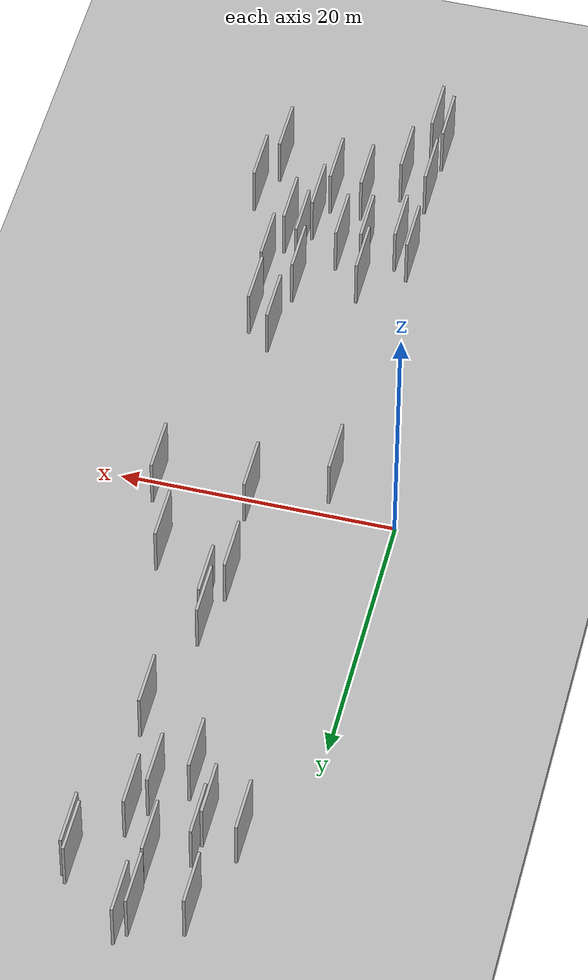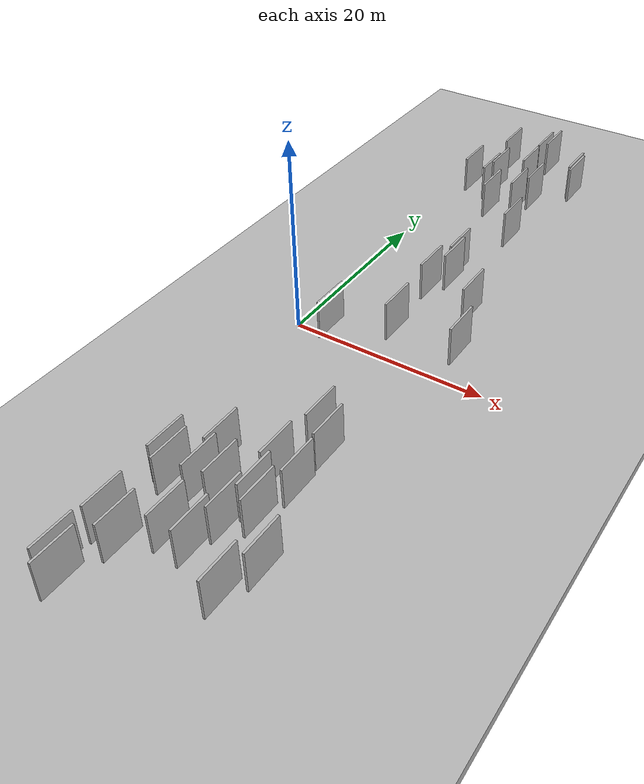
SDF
<?xml version="1.0" encoding="utf-8"?>

<sdf version="1.6">

   <world name="default">

      <gui fullscreen="0">

         <camera name="user_camera">

            <pose>-15 0 4.57585 0 0 0</pose>

            <view_controller>orbit</view_controller>

         </camera>

      </gui>

      <scene>

         <sky>

           <clouds>

             <speed>12</speed>

           </clouds>

         </sky>

         <ambient>0.4 0.4 0.4 1</ambient>

         <background>0.7 0.7 0.7 1</background>

         <shadows>1</shadows>

      </scene>

      <gravity>0 0 -9.8066</gravity>

      <magnetic_field>6e-06 2.3e-05 -4.2e-05</magnetic_field>

      <physics default="0" name="default_physics" type="ode">

         <ode>

            <solver>

               <type>quick</type>

               <iters>10</iters>

               <sor>1.0</sor>

               <use_dynamic_moi_rescaling>0</use_dynamic_moi_rescaling>

            </solver>

            <constraints>

               <cfm>0</cfm>

               <erp>0.2</erp>

               <contact_max_correcting_vel>100</contact_max_correcting_vel>

               <contact_surface_layer>0.001</contact_surface_layer>

            </constraints>

         </ode>

         <max_step_size>0.004</max_step_size>

         <real_time_factor>1</real_time_factor>

         <real_time_update_rate>250</real_time_update_rate>

      </physics>

      <light name="sun" type="directional">

         <cast_shadows>1</cast_shadows>

         <pose>0 0 10 0 0 0</pose>

         <diffuse>0.8 0.8 0.8 1</diffuse>

         <specular>0.2 0.2 0.2 1</specular>

         <attenuation>

            <range>1000</range>

            <constant>0.9</constant>

            <linear>0.01</linear>

            <quadratic>0.001</quadratic>

         </attenuation>

         <direction>-0.5 0.1 -0.9</direction>

      </light>

      <include>

         <name>ground_plane_1</name>

         <uri>model://HANNAS_ground_plane</uri>

         <pose>0 0 0  0 0 0</pose>

      </include>

      <include>

         <name>ground_plane_2</name>

         <uri>model://HANNAS_ground_plane</uri>

         <pose>100 0 0  0 0 0</pose>

      </include>

      <model name="HANNAS_wall_1">

         <static>1</static>

         <pose frame="">4.3847 -29.8307 2.5 0.000000 0.000000 1.570796</pose>

         <link name="link">

            <pose frame="">0 0 2.00 0 0 0</pose>

            <collision name="collision">

               <geometry>

                  <box>

                     <size>4.00 0.2 4.00</size>

                  </box>

               </geometry>

               <max_contacts>10</max_contacts>

               <surface>

                  <contact>

                     <ode/>

                  </contact>

                  <bounce/>

                  <friction>

                     <torsional>

                        <ode/>

                     </torsional>

                     <ode/>

                  </friction>

               </surface>

            </collision>

            <visual name="visual">

               <cast_shadows>0</cast_shadows>

               <geometry>

                  <box>

                     <size>4.00 0.2 4.00</size>

                  </box>

               </geometry>

               <material>

                  <script>

                     <uri>model://HANNAS_wall/materials/scripts</uri>

                     <uri>model://HANNAS_wall/materials/textures</uri>

                     <name>vrc/HANNAS_wall</name>

                  </script>

               </material>

            </visual>

            <self_collide>0</self_collide>

            <enable_wind>0</enable_wind>

            <kinematic>0</kinematic>

         </link>

      </model>

      <model name="HANNAS_wall_2">

         <static>1</static>

         <pose frame="">14.2228 -19.6094 2.5 0.000000 0.000000 1.570796</pose>

         <link name="link">

            <pose frame="">0 0 2.00 0 0 0</pose>

            <collision name="collision">

               <geometry>

                  <box>

                     <size>4.00 0.2 4.00</size>

                  </box>

               </geometry>

               <max_contacts>10</max_contacts>

               <surface>

                  <contact>

                     <ode/>

                  </contact>

                  <bounce/>

                  <friction>

                     <torsional>

                        <ode/>

                     </torsional>

                     <ode/>

                  </friction>

               </surface>

            </collision>

            <visual name="visual">

               <cast_shadows>0</cast_shadows>

               <geometry>

                  <box>

                     <size>4.00 0.2 4.00</size>

                  </box>

               </geometry>

               <material>

                  <script>

                     <uri>model://HANNAS_wall/materials/scripts</uri>

                     <uri>model://HANNAS_wall/materials/textures</uri>

                     <name>vrc/HANNAS_wall</name>

                  </script>

               </material>

            </visual>

            <self_collide>0</self_collide>

            <enable_wind>0</enable_wind>

            <kinematic>0</kinematic>

         </link>

      </model>

      <model name="HANNAS_wall_3">

         <static>1</static>

         <pose frame="">9.9990 1.8396 2.5 0.000000 0.000000 1.570796</pose>

         <link name="link">

            <pose frame="">0 0 2.00 0 0 0</pose>

            <collision name="collision">

               <geometry>

                  <box>

                     <size>4.00 0.2 4.00</size>

                  </box>

               </geometry>

               <max_contacts>10</max_contacts>

               <surface>

                  <contact>

                     <ode/>

                  </contact>

                  <bounce/>

                  <friction>

                     <torsional>

                        <ode/>

                     </torsional>

                     <ode/>

                  </friction>

               </surface>

            </collision>

            <visual name="visual">

               <cast_shadows>0</cast_shadows>

               <geometry>

                  <box>

                     <size>4.00 0.2 4.00</size>

                  </box>

               </geometry>

               <material>

                  <script>

                     <uri>model://HANNAS_wall/materials/scripts</uri>

                     <uri>model://HANNAS_wall/materials/textures</uri>

                     <name>vrc/HANNAS_wall</name>

                  </script>

               </material>

            </visual>

            <self_collide>0</self_collide>

            <enable_wind>0</enable_wind>

            <kinematic>0</kinematic>

         </link>

      </model>

      <model name="HANNAS_wall_4">

         <static>1</static>

         <pose frame="">3.2745 30.1611 2.5 0.000000 0.000000 1.570796</pose>

         <link name="link">

            <pose frame="">0 0 2.00 0 0 0</pose>

            <collision name="collision">

               <geometry>

                  <box>

                     <size>4.00 0.2 4.00</size>

                  </box>

               </geometry>

               <max_contacts>10</max_contacts>

               <surface>

                  <contact>

                     <ode/>

                  </contact>

                  <bounce/>

                  <friction>

                     <torsional>

                        <ode/>

                     </torsional>

                     <ode/>

                  </friction>

               </surface>

            </collision>

            <visual name="visual">

               <cast_shadows>0</cast_shadows>

               <geometry>

                  <box>

                     <size>4.00 0.2 4.00</size>

                  </box>

               </geometry>

               <material>

                  <script>

                     <uri>model://HANNAS_wall/materials/scripts</uri>

                     <uri>model://HANNAS_wall/materials/textures</uri>

                     <name>vrc/HANNAS_wall</name>

                  </script>

               </material>

            </visual>

            <self_collide>0</self_collide>

            <enable_wind>0</enable_wind>

            <kinematic>0</kinematic>

         </link>

      </model>

      <model name="HANNAS_wall_5">

         <static>1</static>

         <pose frame="">9.4414 38.3951 2.5 0.000000 0.000000 1.570796</pose>

         <link name="link">

            <pose frame="">0 0 2.00 0 0 0</pose>

            <collision name="collision">

               <geometry>

                  <box>

                     <size>4.00 0.2 4.00</size>

                  </box>

               </geometry>

               <max_contacts>10</max_contacts>

               <surface>

                  <contact>

                     <ode/>

                  </contact>

                  <bounce/>

                  <friction>

                     <torsional>

                        <ode/>

                     </torsional>

                     <ode/>

                  </friction>

               </surface>

            </collision>

            <visual name="visual">

               <cast_shadows>0</cast_shadows>

               <geometry>

                  <box>

                     <size>4.00 0.2 4.00</size>

                  </box>

               </geometry>

               <material>

                  <script>

                     <uri>model://HANNAS_wall/materials/scripts</uri>

                     <uri>model://HANNAS_wall/materials/textures</uri>

                     <name>vrc/HANNAS_wall</name>

                  </script>

               </material>

            </visual>

            <self_collide>0</self_collide>

            <enable_wind>0</enable_wind>

            <kinematic>0</kinematic>

         </link>

      </model>

      <model name="HANNAS_wall_6">

         <static>1</static>

         <pose frame="">10.9726 29.9443 2.5 0.000000 0.000000 1.570796</pose>

         <link name="link">

            <pose frame="">0 0 2.00 0 0 0</pose>

            <collision name="collision">

               <geometry>

                  <box>

                     <size>4.00 0.2 4.00</size>

                  </box>

               </geometry>

               <max_contacts>10</max_contacts>

               <surface>

                  <contact>

                     <ode/>

                  </contact>

                  <bounce/>

                  <friction>

                     <torsional>

                        <ode/>

                     </torsional>

                     <ode/>

                  </friction>

               </surface>

            </collision>

            <visual name="visual">

               <cast_shadows>0</cast_shadows>

               <geometry>

                  <box>

                     <size>4.00 0.2 4.00</size>

                  </box>

               </geometry>

               <material>

                  <script>

                     <uri>model://HANNAS_wall/materials/scripts</uri>

                     <uri>model://HANNAS_wall/materials/textures</uri>

                     <name>vrc/HANNAS_wall</name>

                  </script>

               </material>

            </visual>

            <self_collide>0</self_collide>

            <enable_wind>0</enable_wind>

            <kinematic>0</kinematic>

         </link>

      </model>

      <model name="HANNAS_wall_7">

         <static>1</static>

         <pose frame="">6.3813 -30.5952 2.5 0.000000 0.000000 1.570796</pose>

         <link name="link">

            <pose frame="">0 0 2.00 0 0 0</pose>

            <collision name="collision">

               <geometry>

                  <box>

                     <size>4.00 0.2 4.00</size>

                  </box>

               </geometry>

               <max_contacts>10</max_contacts>

               <surface>

                  <contact>

                     <ode/>

                  </contact>

                  <bounce/>

                  <friction>

                     <torsional>

                        <ode/>

                     </torsional>

                     <ode/>

                  </friction>

               </surface>

            </collision>

            <visual name="visual">

               <cast_shadows>0</cast_shadows>

               <geometry>

                  <box>

                     <size>4.00 0.2 4.00</size>

                  </box>

               </geometry>

               <material>

                  <script>

                     <uri>model://HANNAS_wall/materials/scripts</uri>

                     <uri>model://HANNAS_wall/materials/textures</uri>

                     <name>vrc/HANNAS_wall</name>

                  </script>

               </material>

            </visual>

            <self_collide>0</self_collide>

            <enable_wind>0</enable_wind>

            <kinematic>0</kinematic>

         </link>

      </model>

      <model name="HANNAS_wall_8">

         <static>1</static>

         <pose frame="">5.1197 -35.2405 2.5 0.000000 0.000000 1.570796</pose>

         <link name="link">

            <pose frame="">0 0 2.00 0 0 0</pose>

            <collision name="collision">

               <geometry>

                  <box>

                     <size>4.00 0.2 4.00</size>

                  </box>

               </geometry>

               <max_contacts>10</max_contacts>

               <surface>

                  <contact>

                     <ode/>

                  </contact>

                  <bounce/>

                  <friction>

                     <torsional>

                        <ode/>

                     </torsional>

                     <ode/>

                  </friction>

               </surface>

            </collision>

            <visual name="visual">

               <cast_shadows>0</cast_shadows>

               <geometry>

                  <box>

                     <size>4.00 0.2 4.00</size>

                  </box>

               </geometry>

               <material>

                  <script>

                     <uri>model://HANNAS_wall/materials/scripts</uri>

                     <uri>model://HANNAS_wall/materials/textures</uri>

                     <name>vrc/HANNAS_wall</name>

                  </script>

               </material>

            </visual>

            <self_collide>0</self_collide>

            <enable_wind>0</enable_wind>

            <kinematic>0</kinematic>

         </link>

      </model>

      <model name="HANNAS_wall_9">

         <static>1</static>

         <pose frame="">5.8029 29.4594 2.5 0.000000 0.000000 1.570796</pose>

         <link name="link">

            <pose frame="">0 0 2.00 0 0 0</pose>

            <collision name="collision">

               <geometry>

                  <box>

                     <size>4.00 0.2 4.00</size>

                  </box>

               </geometry>

               <max_contacts>10</max_contacts>

               <surface>

                  <contact>

                     <ode/>

                  </contact>

                  <bounce/>

                  <friction>

                     <torsional>

                        <ode/>

                     </torsional>

                     <ode/>

                  </friction>

               </surface>

            </collision>

            <visual name="visual">

               <cast_shadows>0</cast_shadows>

               <geometry>

                  <box>

                     <size>4.00 0.2 4.00</size>

                  </box>

               </geometry>

               <material>

                  <script>

                     <uri>model://HANNAS_wall/materials/scripts</uri>

                     <uri>model://HANNAS_wall/materials/textures</uri>

                     <name>vrc/HANNAS_wall</name>

                  </script>

               </material>

            </visual>

            <self_collide>0</self_collide>

            <enable_wind>0</enable_wind>

            <kinematic>0</kinematic>

         </link>

      </model>

      <model name="HANNAS_wall_10">

         <static>1</static>

         <pose frame="">13.7922 34.5497 2.5 0.000000 0.000000 1.570796</pose>

         <link name="link">

            <pose frame="">0 0 2.00 0 0 0</pose>

            <collision name="collision">

               <geometry>

                  <box>

                     <size>4.00 0.2 4.00</size>

                  </box>

               </geometry>

               <max_contacts>10</max_contacts>

               <surface>

                  <contact>

                     <ode/>

                  </contact>

                  <bounce/>

                  <friction>

                     <torsional>

                        <ode/>

                     </torsional>

                     <ode/>

                  </friction>

               </surface>

            </collision>

            <visual name="visual">

               <cast_shadows>0</cast_shadows>

               <geometry>

                  <box>

                     <size>4.00 0.2 4.00</size>

                  </box>

               </geometry>

               <material>

                  <script>

                     <uri>model://HANNAS_wall/materials/scripts</uri>

                     <uri>model://HANNAS_wall/materials/textures</uri>

                     <name>vrc/HANNAS_wall</name>

                  </script>

               </material>

            </visual>

            <self_collide>0</self_collide>

            <enable_wind>0</enable_wind>

            <kinematic>0</kinematic>

         </link>

      </model>

      <model name="HANNAS_wall_11">

         <static>1</static>

         <pose frame="">4.1305 -34.4087 2.5 0.000000 0.000000 1.570796</pose>

         <link name="link">

            <pose frame="">0 0 2.00 0 0 0</pose>

            <collision name="collision">

               <geometry>

                  <box>

                     <size>4.00 0.2 4.00</size>

                  </box>

               </geometry>

               <max_contacts>10</max_contacts>

               <surface>

                  <contact>

                     <ode/>

                  </contact>

                  <bounce/>

                  <friction>

                     <torsional>

                        <ode/>

                     </torsional>

                     <ode/>

                  </friction>

               </surface>

            </collision>

            <visual name="visual">

               <cast_shadows>0</cast_shadows>

               <geometry>

                  <box>

                     <size>4.00 0.2 4.00</size>

                  </box>

               </geometry>

               <material>

                  <script>

                     <uri>model://HANNAS_wall/materials/scripts</uri>

                     <uri>model://HANNAS_wall/materials/textures</uri>

                     <name>vrc/HANNAS_wall</name>

                  </script>

               </material>

            </visual>

            <self_collide>0</self_collide>

            <enable_wind>0</enable_wind>

            <kinematic>0</kinematic>

         </link>

      </model>

      <model name="HANNAS_wall_12">

         <static>1</static>

         <pose frame="">16.6823 1.7361 2.5 0.000000 0.000000 1.570796</pose>

         <link name="link">

            <pose frame="">0 0 2.00 0 0 0</pose>

            <collision name="collision">

               <geometry>

                  <box>

                     <size>4.00 0.2 4.00</size>

                  </box>

               </geometry>

               <max_contacts>10</max_contacts>

               <surface>

                  <contact>

                     <ode/>

                  </contact>

                  <bounce/>

                  <friction>

                     <torsional>

                        <ode/>

                     </torsional>

                     <ode/>

                  </friction>

               </surface>

            </collision>

            <visual name="visual">

               <cast_shadows>0</cast_shadows>

               <geometry>

                  <box>

                     <size>4.00 0.2 4.00</size>

                  </box>

               </geometry>

               <material>

                  <script>

                     <uri>model://HANNAS_wall/materials/scripts</uri>

                     <uri>model://HANNAS_wall/materials/textures</uri>

                     <name>vrc/HANNAS_wall</name>

                  </script>

               </material>

            </visual>

            <self_collide>0</self_collide>

            <enable_wind>0</enable_wind>

            <kinematic>0</kinematic>

         </link>

      </model>

      <model name="HANNAS_wall_13">

         <static>1</static>

         <pose frame="">14.0278 -15.2197 2.5 0.000000 0.000000 1.570796</pose>

         <link name="link">

            <pose frame="">0 0 2.00 0 0 0</pose>

            <collision name="collision">

               <geometry>

                  <box>

                     <size>4.00 0.2 4.00</size>

                  </box>

               </geometry>

               <max_contacts>10</max_contacts>

               <surface>

                  <contact>

                     <ode/>

                  </contact>

                  <bounce/>

                  <friction>

                     <torsional>

                        <ode/>

                     </torsional>

                     <ode/>

                  </friction>

               </surface>

            </collision>

            <visual name="visual">

               <cast_shadows>0</cast_shadows>

               <geometry>

                  <box>

                     <size>4.00 0.2 4.00</size>

                  </box>

               </geometry>

               <material>

                  <script>

                     <uri>model://HANNAS_wall/materials/scripts</uri>

                     <uri>model://HANNAS_wall/materials/textures</uri>

                     <name>vrc/HANNAS_wall</name>

                  </script>

               </material>

            </visual>

            <self_collide>0</self_collide>

            <enable_wind>0</enable_wind>

            <kinematic>0</kinematic>

         </link>

      </model>

      <model name="HANNAS_wall_14">

         <static>1</static>

         <pose frame="">4.6592 -1.1658 2.5 0.000000 0.000000 1.570796</pose>

         <link name="link">

            <pose frame="">0 0 2.00 0 0 0</pose>

            <collision name="collision">

               <geometry>

                  <box>

                     <size>4.00 0.2 4.00</size>

                  </box>

               </geometry>

               <max_contacts>10</max_contacts>

               <surface>

                  <contact>

                     <ode/>

                  </contact>

                  <bounce/>

                  <friction>

                     <torsional>

                        <ode/>

                     </torsional>

                     <ode/>

                  </friction>

               </surface>

            </collision>

            <visual name="visual">

               <cast_shadows>0</cast_shadows>

               <geometry>

                  <box>

                     <size>4.00 0.2 4.00</size>

                  </box>

               </geometry>

               <material>

                  <script>

                     <uri>model://HANNAS_wall/materials/scripts</uri>

                     <uri>model://HANNAS_wall/materials/textures</uri>

                     <name>vrc/HANNAS_wall</name>

                  </script>

               </material>

            </visual>

            <self_collide>0</self_collide>

            <enable_wind>0</enable_wind>

            <kinematic>0</kinematic>

         </link>

      </model>

      <model name="HANNAS_wall_15">

         <static>1</static>

         <pose frame="">8.8139 33.2673 2.5 0.000000 0.000000 1.570796</pose>

         <link name="link">

            <pose frame="">0 0 2.00 0 0 0</pose>

            <collision name="collision">

               <geometry>

                  <box>

                     <size>4.00 0.2 4.00</size>

                  </box>

               </geometry>

               <max_contacts>10</max_contacts>

               <surface>

                  <contact>

                     <ode/>

                  </contact>

                  <bounce/>

                  <friction>

                     <torsional>

                        <ode/>

                     </torsional>

                     <ode/>

                  </friction>

               </surface>

            </collision>

            <visual name="visual">

               <cast_shadows>0</cast_shadows>

               <geometry>

                  <box>

                     <size>4.00 0.2 4.00</size>

                  </box>

               </geometry>

               <material>

                  <script>

                     <uri>model://HANNAS_wall/materials/scripts</uri>

                     <uri>model://HANNAS_wall/materials/textures</uri>

                     <name>vrc/HANNAS_wall</name>

                  </script>

               </material>

            </visual>

            <self_collide>0</self_collide>

            <enable_wind>0</enable_wind>

            <kinematic>0</kinematic>

         </link>

      </model>

      <model name="HANNAS_wall_16">

         <static>1</static>

         <pose frame="">5.2324 -23.7114 2.5 0.000000 0.000000 1.570796</pose>

         <link name="link">

            <pose frame="">0 0 2.00 0 0 0</pose>

            <collision name="collision">

               <geometry>

                  <box>

                     <size>4.00 0.2 4.00</size>

                  </box>

               </geometry>

               <max_contacts>10</max_contacts>

               <surface>

                  <contact>

                     <ode/>

                  </contact>

                  <bounce/>

                  <friction>

                     <torsional>

                        <ode/>

                     </torsional>

                     <ode/>

                  </friction>

               </surface>

            </collision>

            <visual name="visual">

               <cast_shadows>0</cast_shadows>

               <geometry>

                  <box>

                     <size>4.00 0.2 4.00</size>

                  </box>

               </geometry>

               <material>

                  <script>

                     <uri>model://HANNAS_wall/materials/scripts</uri>

                     <uri>model://HANNAS_wall/materials/textures</uri>

                     <name>vrc/HANNAS_wall</name>

                  </script>

               </material>

            </visual>

            <self_collide>0</self_collide>

            <enable_wind>0</enable_wind>

            <kinematic>0</kinematic>

         </link>

      </model>

      <model name="HANNAS_wall_17">

         <static>1</static>

         <pose frame="">5.1013 36.6157 2.5 0.000000 0.000000 1.570796</pose>

         <link name="link">

            <pose frame="">0 0 2.00 0 0 0</pose>

            <collision name="collision">

               <geometry>

                  <box>

                     <size>4.00 0.2 4.00</size>

                  </box>

               </geometry>

               <max_contacts>10</max_contacts>

               <surface>

                  <contact>

                     <ode/>

                  </contact>

                  <bounce/>

                  <friction>

                     <torsional>

                        <ode/>

                     </torsional>

                     <ode/>

                  </friction>

               </surface>

            </collision>

            <visual name="visual">

               <cast_shadows>0</cast_shadows>

               <geometry>

                  <box>

                     <size>4.00 0.2 4.00</size>

                  </box>

               </geometry>

               <material>

                  <script>

                     <uri>model://HANNAS_wall/materials/scripts</uri>

                     <uri>model://HANNAS_wall/materials/textures</uri>

                     <name>vrc/HANNAS_wall</name>

                  </script>

               </material>

            </visual>

            <self_collide>0</self_collide>

            <enable_wind>0</enable_wind>

            <kinematic>0</kinematic>

         </link>

      </model>

      <model name="HANNAS_wall_18">

         <static>1</static>

         <pose frame="">13.4815 -23.4838 2.5 0.000000 0.000000 1.570796</pose>

         <link name="link">

            <pose frame="">0 0 2.00 0 0 0</pose>

            <collision name="collision">

               <geometry>

                  <box>

                     <size>4.00 0.2 4.00</size>

                  </box>

               </geometry>

               <max_contacts>10</max_contacts>

               <surface>

                  <contact>

                     <ode/>

                  </contact>

                  <bounce/>

                  <friction>

                     <torsional>

                        <ode/>

                     </torsional>

                     <ode/>

                  </friction>

               </surface>

            </collision>

            <visual name="visual">

               <cast_shadows>0</cast_shadows>

               <geometry>

                  <box>

                     <size>4.00 0.2 4.00</size>

                  </box>

               </geometry>

               <material>

                  <script>

                     <uri>model://HANNAS_wall/materials/scripts</uri>

                     <uri>model://HANNAS_wall/materials/textures</uri>

                     <name>vrc/HANNAS_wall</name>

                  </script>

               </material>

            </visual>

            <self_collide>0</self_collide>

            <enable_wind>0</enable_wind>

            <kinematic>0</kinematic>

         </link>

      </model>

      <model name="HANNAS_wall_19">

         <static>1</static>

         <pose frame="">12.3198 -22.4349 2.5 0.000000 0.000000 1.570796</pose>

         <link name="link">

            <pose frame="">0 0 2.00 0 0 0</pose>

            <collision name="collision">

               <geometry>

                  <box>

                     <size>4.00 0.2 4.00</size>

                  </box>

               </geometry>

               <max_contacts>10</max_contacts>

               <surface>

                  <contact>

                     <ode/>

                  </contact>

                  <bounce/>

                  <friction>

                     <torsional>

                        <ode/>

                     </torsional>

                     <ode/>

                  </friction>

               </surface>

            </collision>

            <visual name="visual">

               <cast_shadows>0</cast_shadows>

               <geometry>

                  <box>

                     <size>4.00 0.2 4.00</size>

                  </box>

               </geometry>

               <material>

                  <script>

                     <uri>model://HANNAS_wall/materials/scripts</uri>

                     <uri>model://HANNAS_wall/materials/textures</uri>

                     <name>vrc/HANNAS_wall</name>

                  </script>

               </material>

            </visual>

            <self_collide>0</self_collide>

            <enable_wind>0</enable_wind>

            <kinematic>0</kinematic>

         </link>

      </model>

      <model name="HANNAS_wall_20">

         <static>1</static>

         <pose frame="">11.1472 -28.1819 2.5 0.000000 0.000000 1.570796</pose>

         <link name="link">

            <pose frame="">0 0 2.00 0 0 0</pose>

            <collision name="collision">

               <geometry>

                  <box>

                     <size>4.00 0.2 4.00</size>

                  </box>

               </geometry>

               <max_contacts>10</max_contacts>

               <surface>

                  <contact>

                     <ode/>

                  </contact>

                  <bounce/>

                  <friction>

                     <torsional>

                        <ode/>

                     </torsional>

                     <ode/>

                  </friction>

               </surface>

            </collision>

            <visual name="visual">

               <cast_shadows>0</cast_shadows>

               <geometry>

                  <box>

                     <size>4.00 0.2 4.00</size>

                  </box>

               </geometry>

               <material>

                  <script>

                     <uri>model://HANNAS_wall/materials/scripts</uri>

                     <uri>model://HANNAS_wall/materials/textures</uri>

                     <name>vrc/HANNAS_wall</name>

                  </script>

               </material>

            </visual>

            <self_collide>0</self_collide>

            <enable_wind>0</enable_wind>

            <kinematic>0</kinematic>

         </link>

      </model>

      <model name="HANNAS_wall_21">

         <static>1</static>

         <pose frame="">11.8134 -25.2558 2.5 0.000000 0.000000 1.570796</pose>

         <link name="link">

            <pose frame="">0 0 2.00 0 0 0</pose>

            <collision name="collision">

               <geometry>

                  <box>

                     <size>4.00 0.2 4.00</size>

                  </box>

               </geometry>

               <max_contacts>10</max_contacts>

               <surface>

                  <contact>

                     <ode/>

                  </contact>

                  <bounce/>

                  <friction>

                     <torsional>

                        <ode/>

                     </torsional>

                     <ode/>

                  </friction>

               </surface>

            </collision>

            <visual name="visual">

               <cast_shadows>0</cast_shadows>

               <geometry>

                  <box>

                     <size>4.00 0.2 4.00</size>

                  </box>

               </geometry>

               <material>

                  <script>

                     <uri>model://HANNAS_wall/materials/scripts</uri>

                     <uri>model://HANNAS_wall/materials/textures</uri>

                     <name>vrc/HANNAS_wall</name>

                  </script>

               </material>

            </visual>

            <self_collide>0</self_collide>

            <enable_wind>0</enable_wind>

            <kinematic>0</kinematic>

         </link>

      </model>

      <model name="HANNAS_wall_22">

         <static>1</static>

         <pose frame="">4.1605 -22.8858 2.5 0.000000 0.000000 1.570796</pose>

         <link name="link">

            <pose frame="">0 0 2.00 0 0 0</pose>

            <collision name="collision">

               <geometry>

                  <box>

                     <size>4.00 0.2 4.00</size>

                  </box>

               </geometry>

               <max_contacts>10</max_contacts>

               <surface>

                  <contact>

                     <ode/>

                  </contact>

                  <bounce/>

                  <friction>

                     <torsional>

                        <ode/>

                     </torsional>

                     <ode/>

                  </friction>

               </surface>

            </collision>

            <visual name="visual">

               <cast_shadows>0</cast_shadows>

               <geometry>

                  <box>

                     <size>4.00 0.2 4.00</size>

                  </box>

               </geometry>

               <material>

                  <script>

                     <uri>model://HANNAS_wall/materials/scripts</uri>

                     <uri>model://HANNAS_wall/materials/textures</uri>

                     <name>vrc/HANNAS_wall</name>

                  </script>

               </material>

            </visual>

            <self_collide>0</self_collide>

            <enable_wind>0</enable_wind>

            <kinematic>0</kinematic>

         </link>

      </model>

      <model name="HANNAS_wall_23">

         <static>1</static>

         <pose frame="">10.3701 13.3363 2.5 0.000000 0.000000 1.570796</pose>

         <link name="link">

            <pose frame="">0 0 2.00 0 0 0</pose>

            <collision name="collision">

               <geometry>

                  <box>

                     <size>4.00 0.2 4.00</size>

                  </box>

               </geometry>

               <max_contacts>10</max_contacts>

               <surface>

                  <contact>

                     <ode/>

                  </contact>

                  <bounce/>

                  <friction>

                     <torsional>

                        <ode/>

                     </torsional>

                     <ode/>

                  </friction>

               </surface>

            </collision>

            <visual name="visual">

               <cast_shadows>0</cast_shadows>

               <geometry>

                  <box>

                     <size>4.00 0.2 4.00</size>

                  </box>

               </geometry>

               <material>

                  <script>

                     <uri>model://HANNAS_wall/materials/scripts</uri>

                     <uri>model://HANNAS_wall/materials/textures</uri>

                     <name>vrc/HANNAS_wall</name>

                  </script>

               </material>

            </visual>

            <self_collide>0</self_collide>

            <enable_wind>0</enable_wind>

            <kinematic>0</kinematic>

         </link>

      </model>

      <model name="HANNAS_wall_24">

         <static>1</static>

         <pose frame="">9.4260 -22.7633 2.5 0.000000 0.000000 1.570796</pose>

         <link name="link">

            <pose frame="">0 0 2.00 0 0 0</pose>

            <collision name="collision">

               <geometry>

                  <box>

                     <size>4.00 0.2 4.00</size>

                  </box>

               </geometry>

               <max_contacts>10</max_contacts>

               <surface>

                  <contact>

                     <ode/>

                  </contact>

                  <bounce/>

                  <friction>

                     <torsional>

                        <ode/>

                     </torsional>

                     <ode/>

                  </friction>

               </surface>

            </collision>

            <visual name="visual">

               <cast_shadows>0</cast_shadows>

               <geometry>

                  <box>

                     <size>4.00 0.2 4.00</size>

                  </box>

               </geometry>

               <material>

                  <script>

                     <uri>model://HANNAS_wall/materials/scripts</uri>

                     <uri>model://HANNAS_wall/materials/textures</uri>

                     <name>vrc/HANNAS_wall</name>

                  </script>

               </material>

            </visual>

            <self_collide>0</self_collide>

            <enable_wind>0</enable_wind>

            <kinematic>0</kinematic>

         </link>

      </model>

      <model name="HANNAS_wall_25">

         <static>1</static>

         <pose frame="">6.0839 31.2071 2.5 0.000000 0.000000 1.570796</pose>

         <link name="link">

            <pose frame="">0 0 2.00 0 0 0</pose>

            <collision name="collision">

               <geometry>

                  <box>

                     <size>4.00 0.2 4.00</size>

                  </box>

               </geometry>

               <max_contacts>10</max_contacts>

               <surface>

                  <contact>

                     <ode/>

                  </contact>

                  <bounce/>

                  <friction>

                     <torsional>

                        <ode/>

                     </torsional>

                     <ode/>

                  </friction>

               </surface>

            </collision>

            <visual name="visual">

               <cast_shadows>0</cast_shadows>

               <geometry>

                  <box>

                     <size>4.00 0.2 4.00</size>

                  </box>

               </geometry>

               <material>

                  <script>

                     <uri>model://HANNAS_wall/materials/scripts</uri>

                     <uri>model://HANNAS_wall/materials/textures</uri>

                     <name>vrc/HANNAS_wall</name>

                  </script>

               </material>

            </visual>

            <self_collide>0</self_collide>

            <enable_wind>0</enable_wind>

            <kinematic>0</kinematic>

         </link>

      </model>

      <model name="HANNAS_wall_26">

         <static>1</static>

         <pose frame="">7.2217 -19.9952 2.5 0.000000 0.000000 1.570796</pose>

         <link name="link">

            <pose frame="">0 0 2.00 0 0 0</pose>

            <collision name="collision">

               <geometry>

                  <box>

                     <size>4.00 0.2 4.00</size>

                  </box>

               </geometry>

               <max_contacts>10</max_contacts>

               <surface>

                  <contact>

                     <ode/>

                  </contact>

                  <bounce/>

                  <friction>

                     <torsional>

                        <ode/>

                     </torsional>

                     <ode/>

                  </friction>

               </surface>

            </collision>

            <visual name="visual">

               <cast_shadows>0</cast_shadows>

               <geometry>

                  <box>

                     <size>4.00 0.2 4.00</size>

                  </box>

               </geometry>

               <material>

                  <script>

                     <uri>model://HANNAS_wall/materials/scripts</uri>

                     <uri>model://HANNAS_wall/materials/textures</uri>

                     <name>vrc/HANNAS_wall</name>

                  </script>

               </material>

            </visual>

            <self_collide>0</self_collide>

            <enable_wind>0</enable_wind>

            <kinematic>0</kinematic>

         </link>

      </model>

      <model name="HANNAS_wall_27">

         <static>1</static>

         <pose frame="">15.5526 -30.4218 2.5 0.000000 0.000000 1.570796</pose>

         <link name="link">

            <pose frame="">0 0 2.00 0 0 0</pose>

            <collision name="collision">

               <geometry>

                  <box>

                     <size>4.00 0.2 4.00</size>

                  </box>

               </geometry>

               <max_contacts>10</max_contacts>

               <surface>

                  <contact>

                     <ode/>

                  </contact>

                  <bounce/>

                  <friction>

                     <torsional>

                        <ode/>

                     </torsional>

                     <ode/>

                  </friction>

               </surface>

            </collision>

            <visual name="visual">

               <cast_shadows>0</cast_shadows>

               <geometry>

                  <box>

                     <size>4.00 0.2 4.00</size>

                  </box>

               </geometry>

               <material>

                  <script>

                     <uri>model://HANNAS_wall/materials/scripts</uri>

                     <uri>model://HANNAS_wall/materials/textures</uri>

                     <name>vrc/HANNAS_wall</name>

                  </script>

               </material>

            </visual>

            <self_collide>0</self_collide>

            <enable_wind>0</enable_wind>

            <kinematic>0</kinematic>

         </link>

      </model>

      <model name="HANNAS_wall_28">

         <static>1</static>

         <pose frame="">12.3128 -13.8022 2.5 0.000000 0.000000 1.570796</pose>

         <link name="link">

            <pose frame="">0 0 2.00 0 0 0</pose>

            <collision name="collision">

               <geometry>

                  <box>

                     <size>4.00 0.2 4.00</size>

                  </box>

               </geometry>

               <max_contacts>10</max_contacts>

               <surface>

                  <contact>

                     <ode/>

                  </contact>

                  <bounce/>

                  <friction>

                     <torsional>

                        <ode/>

                     </torsional>

                     <ode/>

                  </friction>

               </surface>

            </collision>

            <visual name="visual">

               <cast_shadows>0</cast_shadows>

               <geometry>

                  <box>

                     <size>4.00 0.2 4.00</size>

                  </box>

               </geometry>

               <material>

                  <script>

                     <uri>model://HANNAS_wall/materials/scripts</uri>

                     <uri>model://HANNAS_wall/materials/textures</uri>

                     <name>vrc/HANNAS_wall</name>

                  </script>

               </material>

            </visual>

            <self_collide>0</self_collide>

            <enable_wind>0</enable_wind>

            <kinematic>0</kinematic>

         </link>

      </model>

      <model name="HANNAS_wall_29">

         <static>1</static>

         <pose frame="">7.5653 26.0391 2.5 0.000000 0.000000 1.570796</pose>

         <link name="link">

            <pose frame="">0 0 2.00 0 0 0</pose>

            <collision name="collision">

               <geometry>

                  <box>

                     <size>4.00 0.2 4.00</size>

                  </box>

               </geometry>

               <max_contacts>10</max_contacts>

               <surface>

                  <contact>

                     <ode/>

                  </contact>

                  <bounce/>

                  <friction>

                     <torsional>

                        <ode/>

                     </torsional>

                     <ode/>

                  </friction>

               </surface>

            </collision>

            <visual name="visual">

               <cast_shadows>0</cast_shadows>

               <geometry>

                  <box>

                     <size>4.00 0.2 4.00</size>

                  </box>

               </geometry>

               <material>

                  <script>

                     <uri>model://HANNAS_wall/materials/scripts</uri>

                     <uri>model://HANNAS_wall/materials/textures</uri>

                     <name>vrc/HANNAS_wall</name>

                  </script>

               </material>

            </visual>

            <self_collide>0</self_collide>

            <enable_wind>0</enable_wind>

            <kinematic>0</kinematic>

         </link>

      </model>

      <model name="HANNAS_wall_30">

         <static>1</static>

         <pose frame="">10.7030 11.5822 2.5 0.000000 0.000000 1.570796</pose>

         <link name="link">

            <pose frame="">0 0 2.00 0 0 0</pose>

            <collision name="collision">

               <geometry>

                  <box>

                     <size>4.00 0.2 4.00</size>

                  </box>

               </geometry>

               <max_contacts>10</max_contacts>

               <surface>

                  <contact>

                     <ode/>

                  </contact>

                  <bounce/>

                  <friction>

                     <torsional>

                        <ode/>

                     </torsional>

                     <ode/>

                  </friction>

               </surface>

            </collision>

            <visual name="visual">

               <cast_shadows>0</cast_shadows>

               <geometry>

                  <box>

                     <size>4.00 0.2 4.00</size>

                  </box>

               </geometry>

               <material>

                  <script>

                     <uri>model://HANNAS_wall/materials/scripts</uri>

                     <uri>model://HANNAS_wall/materials/textures</uri>

                     <name>vrc/HANNAS_wall</name>

                  </script>

               </material>

            </visual>

            <self_collide>0</self_collide>

            <enable_wind>0</enable_wind>

            <kinematic>0</kinematic>

         </link>

      </model>

      <model name="HANNAS_wall_31">

         <static>1</static>

         <pose frame="">14.8318 7.5999 2.5 0.000000 0.000000 1.570796</pose>

         <link name="link">

            <pose frame="">0 0 2.00 0 0 0</pose>

            <collision name="collision">

               <geometry>

                  <box>

                     <size>4.00 0.2 4.00</size>

                  </box>

               </geometry>

               <max_contacts>10</max_contacts>

               <surface>

                  <contact>

                     <ode/>

                  </contact>

                  <bounce/>

                  <friction>

                     <torsional>

                        <ode/>

                     </torsional>

                     <ode/>

                  </friction>

               </surface>

            </collision>

            <visual name="visual">

               <cast_shadows>0</cast_shadows>

               <geometry>

                  <box>

                     <size>4.00 0.2 4.00</size>

                  </box>

               </geometry>

               <material>

                  <script>

                     <uri>model://HANNAS_wall/materials/scripts</uri>

                     <uri>model://HANNAS_wall/materials/textures</uri>

                     <name>vrc/HANNAS_wall</name>

                  </script>

               </material>

            </visual>

            <self_collide>0</self_collide>

            <enable_wind>0</enable_wind>

            <kinematic>0</kinematic>

         </link>

      </model>

      <model name="HANNAS_wall_32">

         <static>1</static>

         <pose frame="">7.6338 -23.0873 2.5 0.000000 0.000000 1.570796</pose>

         <link name="link">

            <pose frame="">0 0 2.00 0 0 0</pose>

            <collision name="collision">

               <geometry>

                  <box>

                     <size>4.00 0.2 4.00</size>

                  </box>

               </geometry>

               <max_contacts>10</max_contacts>

               <surface>

                  <contact>

                     <ode/>

                  </contact>

                  <bounce/>

                  <friction>

                     <torsional>

                        <ode/>

                     </torsional>

                     <ode/>

                  </friction>

               </surface>

            </collision>

            <visual name="visual">

               <cast_shadows>0</cast_shadows>

               <geometry>

                  <box>

                     <size>4.00 0.2 4.00</size>

                  </box>

               </geometry>

               <material>

                  <script>

                     <uri>model://HANNAS_wall/materials/scripts</uri>

                     <uri>model://HANNAS_wall/materials/textures</uri>

                     <name>vrc/HANNAS_wall</name>

                  </script>

               </material>

            </visual>

            <self_collide>0</self_collide>

            <enable_wind>0</enable_wind>

            <kinematic>0</kinematic>

         </link>

      </model>

      <model name="HANNAS_wall_33">

         <static>1</static>

         <pose frame="">11.7596 -18.9551 2.5 0.000000 0.000000 1.570796</pose>

         <link name="link">

            <pose frame="">0 0 2.00 0 0 0</pose>

            <collision name="collision">

               <geometry>

                  <box>

                     <size>4.00 0.2 4.00</size>

                  </box>

               </geometry>

               <max_contacts>10</max_contacts>

               <surface>

                  <contact>

                     <ode/>

                  </contact>

                  <bounce/>

                  <friction>

                     <torsional>

                        <ode/>

                     </torsional>

                     <ode/>

                  </friction>

               </surface>

            </collision>

            <visual name="visual">

               <cast_shadows>0</cast_shadows>

               <geometry>

                  <box>

                     <size>4.00 0.2 4.00</size>

                  </box>

               </geometry>

               <material>

                  <script>

                     <uri>model://HANNAS_wall/materials/scripts</uri>

                     <uri>model://HANNAS_wall/materials/textures</uri>

                     <name>vrc/HANNAS_wall</name>

                  </script>

               </material>

            </visual>

            <self_collide>0</self_collide>

            <enable_wind>0</enable_wind>

            <kinematic>0</kinematic>

         </link>

      </model>

      <model name="HANNAS_wall_34">

         <static>1</static>

         <pose frame="">16.6591 -27.0915 2.5 0.000000 0.000000 1.570796</pose>

         <link name="link">

            <pose frame="">0 0 2.00 0 0 0</pose>

            <collision name="collision">

               <geometry>

                  <box>

                     <size>4.00 0.2 4.00</size>

                  </box>

               </geometry>

               <max_contacts>10</max_contacts>

               <surface>

                  <contact>

                     <ode/>

                  </contact>

                  <bounce/>

                  <friction>

                     <torsional>

                        <ode/>

                     </torsional>

                     <ode/>

                  </friction>

               </surface>

            </collision>

            <visual name="visual">

               <cast_shadows>0</cast_shadows>

               <geometry>

                  <box>

                     <size>4.00 0.2 4.00</size>

                  </box>

               </geometry>

               <material>

                  <script>

                     <uri>model://HANNAS_wall/materials/scripts</uri>

                     <uri>model://HANNAS_wall/materials/textures</uri>

                     <name>vrc/HANNAS_wall</name>

                  </script>

               </material>

            </visual>

            <self_collide>0</self_collide>

            <enable_wind>0</enable_wind>

            <kinematic>0</kinematic>

         </link>

      </model>

      <model name="HANNAS_wall_35">

         <static>1</static>

         <pose frame="">14.1236 33.9546 2.5 0.000000 0.000000 1.570796</pose>

         <link name="link">

            <pose frame="">0 0 2.00 0 0 0</pose>

            <collision name="collision">

               <geometry>

                  <box>

                     <size>4.00 0.2 4.00</size>

                  </box>

               </geometry>

               <max_contacts>10</max_contacts>

               <surface>

                  <contact>

                     <ode/>

                  </contact>

                  <bounce/>

                  <friction>

                     <torsional>

                        <ode/>

                     </torsional>

                     <ode/>

                  </friction>

               </surface>

            </collision>

            <visual name="visual">

               <cast_shadows>0</cast_shadows>

               <geometry>

                  <box>

                     <size>4.00 0.2 4.00</size>

                  </box>

               </geometry>

               <material>

                  <script>

                     <uri>model://HANNAS_wall/materials/scripts</uri>

                     <uri>model://HANNAS_wall/materials/textures</uri>

                     <name>vrc/HANNAS_wall</name>

                  </script>

               </material>

            </visual>

            <self_collide>0</self_collide>

            <enable_wind>0</enable_wind>

            <kinematic>0</kinematic>

         </link>

      </model>

      <model name="HANNAS_wall_36">

         <static>1</static>

         <pose frame="">9.5283 9.0852 2.5 0.000000 0.000000 1.570796</pose>

         <link name="link">

            <pose frame="">0 0 2.00 0 0 0</pose>

            <collision name="collision">

               <geometry>

                  <box>

                     <size>4.00 0.2 4.00</size>

                  </box>

               </geometry>

               <max_contacts>10</max_contacts>

               <surface>

                  <contact>

                     <ode/>

                  </contact>

                  <bounce/>

                  <friction>

                     <torsional>

                        <ode/>

                     </torsional>

                     <ode/>

                  </friction>

               </surface>

            </collision>

            <visual name="visual">

               <cast_shadows>0</cast_shadows>

               <geometry>

                  <box>

                     <size>4.00 0.2 4.00</size>

                  </box>

               </geometry>

               <material>

                  <script>

                     <uri>model://HANNAS_wall/materials/scripts</uri>

                     <uri>model://HANNAS_wall/materials/textures</uri>

                     <name>vrc/HANNAS_wall</name>

                  </script>

               </material>

            </visual>

            <self_collide>0</self_collide>

            <enable_wind>0</enable_wind>

            <kinematic>0</kinematic>

         </link>

      </model>

      <model name="HANNAS_wall_37">

         <static>1</static>

         <pose frame="">8.7468 37.5380 2.5 0.000000 0.000000 1.570796</pose>

         <link name="link">

            <pose frame="">0 0 2.00 0 0 0</pose>

            <collision name="collision">

               <geometry>

                  <box>

                     <size>4.00 0.2 4.00</size>

                  </box>

               </geometry>

               <max_contacts>10</max_contacts>

               <surface>

                  <contact>

                     <ode/>

                  </contact>

                  <bounce/>

                  <friction>

                     <torsional>

                        <ode/>

                     </torsional>

                     <ode/>

                  </friction>

               </surface>

            </collision>

            <visual name="visual">

               <cast_shadows>0</cast_shadows>

               <geometry>

                  <box>

                     <size>4.00 0.2 4.00</size>

                  </box>

               </geometry>

               <material>

                  <script>

                     <uri>model://HANNAS_wall/materials/scripts</uri>

                     <uri>model://HANNAS_wall/materials/textures</uri>

                     <name>vrc/HANNAS_wall</name>

                  </script>

               </material>

            </visual>

            <self_collide>0</self_collide>

            <enable_wind>0</enable_wind>

            <kinematic>0</kinematic>

         </link>

      </model>

      <model name="HANNAS_wall_38">

         <static>1</static>

         <pose frame="">12.1448 21.7128 2.5 0.000000 0.000000 1.570796</pose>

         <link name="link">

            <pose frame="">0 0 2.00 0 0 0</pose>

            <collision name="collision">

               <geometry>

                  <box>

                     <size>4.00 0.2 4.00</size>

                  </box>

               </geometry>

               <max_contacts>10</max_contacts>

               <surface>

                  <contact>

                     <ode/>

                  </contact>

                  <bounce/>

                  <friction>

                     <torsional>

                        <ode/>

                     </torsional>

                     <ode/>

                  </friction>

               </surface>

            </collision>

            <visual name="visual">

               <cast_shadows>0</cast_shadows>

               <geometry>

                  <box>

                     <size>4.00 0.2 4.00</size>

                  </box>

               </geometry>

               <material>

                  <script>

                     <uri>model://HANNAS_wall/materials/scripts</uri>

                     <uri>model://HANNAS_wall/materials/textures</uri>

                     <name>vrc/HANNAS_wall</name>

                  </script>

               </material>

            </visual>

            <self_collide>0</self_collide>

            <enable_wind>0</enable_wind>

            <kinematic>0</kinematic>

         </link>

      </model>

      <model name="HANNAS_wall_39">

         <static>1</static>

         <pose frame="">8.8124 -28.0743 2.5 0.000000 0.000000 1.570796</pose>

         <link name="link">

            <pose frame="">0 0 2.00 0 0 0</pose>

            <collision name="collision">

               <geometry>

                  <box>

                     <size>4.00 0.2 4.00</size>

                  </box>

               </geometry>

               <max_contacts>10</max_contacts>

               <surface>

                  <contact>

                     <ode/>

                  </contact>

                  <bounce/>

                  <friction>

                     <torsional>

                        <ode/>

                     </torsional>

                     <ode/>

                  </friction>

               </surface>

            </collision>

            <visual name="visual">

               <cast_shadows>0</cast_shadows>

               <geometry>

                  <box>

                     <size>4.00 0.2 4.00</size>

                  </box>

               </geometry>

               <material>

                  <script>

                     <uri>model://HANNAS_wall/materials/scripts</uri>

                     <uri>model://HANNAS_wall/materials/textures</uri>

                     <name>vrc/HANNAS_wall</name>

                  </script>

               </material>

            </visual>

            <self_collide>0</self_collide>

            <enable_wind>0</enable_wind>

            <kinematic>0</kinematic>

         </link>

      </model>

      <model name="HANNAS_wall_40">

         <static>1</static>

         <pose frame="">9.9205 27.8956 2.5 0.000000 0.000000 1.570796</pose>

         <link name="link">

            <pose frame="">0 0 2.00 0 0 0</pose>

            <collision name="collision">

               <geometry>

                  <box>

                     <size>4.00 0.2 4.00</size>

                  </box>

               </geometry>

               <max_contacts>10</max_contacts>

               <surface>

                  <contact>

                     <ode/>

                  </contact>

                  <bounce/>

                  <friction>

                     <torsional>

                        <ode/>

                     </torsional>

                     <ode/>

                  </friction>

               </surface>

            </collision>

            <visual name="visual">

               <cast_shadows>0</cast_shadows>

               <geometry>

                  <box>

                     <size>4.00 0.2 4.00</size>

                  </box>

               </geometry>

               <material>

                  <script>

                     <uri>model://HANNAS_wall/materials/scripts</uri>

                     <uri>model://HANNAS_wall/materials/textures</uri>

                     <name>vrc/HANNAS_wall</name>

                  </script>

               </material>

            </visual>

            <self_collide>0</self_collide>

            <enable_wind>0</enable_wind>

            <kinematic>0</kinematic>

         </link>

      </model>

   </world>

</sdf>
